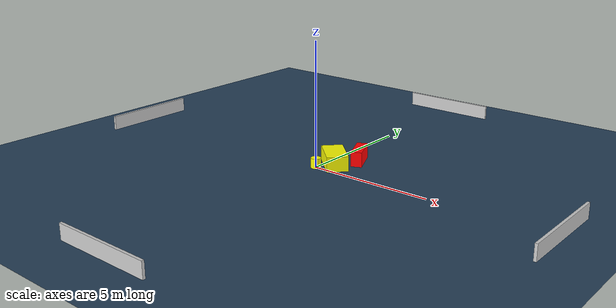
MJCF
<?xml version="1.0" ?>
<mujoco model="generated_environment">
  <option timestep="0.01" integrator="RK4" cone="elliptic"/>
  <default>
    <geom density="1"/>
  </default>
  <asset>
    <texture builtin="gradient" height="3072" name="skybox" rgb1="0.3 0.5 0.7" rgb2="0 0 0" type="skybox" width="512"/>
    <texture builtin="checker" height="300" name="groundplane" rgb1="0.2 0.3 0.4" rgb2="0.1 0.2 0.3" type="2d" width="300"/>
    <material name="groundplane" reflectance="0.2" texrepeat="5 5" texture="groundplane"/>
  </asset>
  <worldbody>
    <light dir="0 0 -1" directional="true" pos="0 0 1.5"/>
    <geom condim="3" friction="0.5 0.005 0.001" material="groundplane" name="floor" pos="0 0 0" size="0 0 0.05" type="plane"/>
    <body name="walls">
      <geom name="wall_1" condim="4" pos="-10.0 0.0 0.3" rgba="0.800000011920929 0.800000011920929 0.800000011920929 1.0" size="0.05 2.0 0.3" type="box"/>
      <geom name="wall_2" condim="4" pos="10.0 0.0 0.3" rgba="0.800000011920929 0.800000011920929 0.800000011920929 1.0" size="0.05 2.0 0.3" type="box"/>
      <geom name="wall_3" condim="4" pos="0.0 -10.0 0.3" rgba="0.800000011920929 0.800000011920929 0.800000011920929 1.0" size="2.0 0.05 0.3" type="box"/>
      <geom name="wall_4" condim="4" pos="0.0 10.0 0.3" rgba="0.800000011920929 0.800000011920929 0.800000011920929 1.0" size="2.0 0.05 0.3" type="box"/>
    </body>
    <body name="robot">
      <joint name="joint_x" type="slide" pos="0 0 0" axis="1 0 0"/>
      <joint name="joint_y" type="slide" pos="0 0 0" axis="0 1 0"/>
      <geom name="robot" type="cylinder" pos="0.0 0.0 0.2" size="0.2 0.2 0.0" mass="5.0" friction="1.0 0.005 0.0001" condim="4" rgba="1.0 1.0 0.0 1.0"/>
    </body>
    <body name="obstacle_1_movable">
      <geom name="obstacle_1_movable" condim="4" pos="0.4298594426218613 0.6327305588794704 0.3" euler="0 0 137.2825004669461" friction="0.0 0.005 0.001" rgba="1.0 1.0 0.0 1.0" size="0.7301454073728957 0.4281686848366857 0.3" type="box" mass="0.1"/>
      <joint type="free"/>
    </body>
    <body name="obstacle_2_static">
      <geom name="obstacle_2_static" condim="4" pos="0.9347508386935217 1.5615509905151324 0.3" euler="0 0 24.577743888890904" friction="0.0 0.005 0.001" rgba="1.0 0.0 0.0 1.0" size="0.21843092504995149 0.5947116989324917 0.3" type="box"/>
    </body>
  </worldbody>
  <actuator>
    <motor name="actuator_x" joint="joint_x" gear="1" ctrlrange="-1 1"/>
    <motor name="actuator_y" joint="joint_y" gear="1" ctrlrange="-1 1"/>
  </actuator>
</mujoco>
